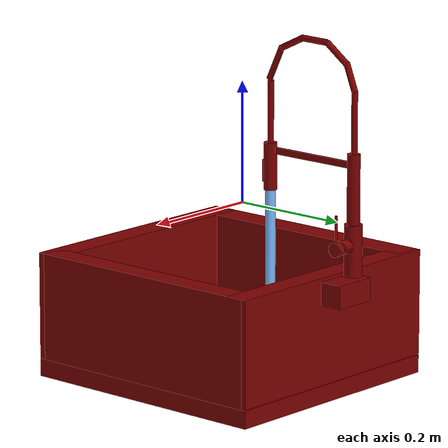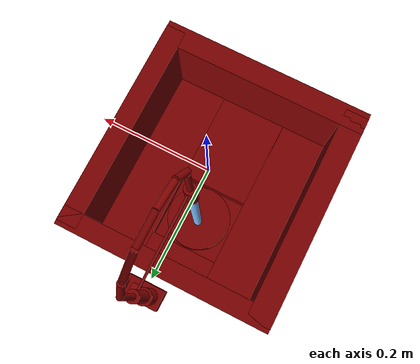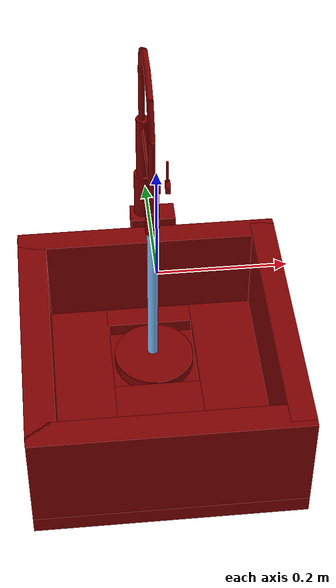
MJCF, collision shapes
<mujoco model="model">
  <compiler angle="radian"/>
  <asset>
    <mesh file="visuals/handle.obj" name="handle_vis"/>
    <mesh file="visuals/Body001.obj" name="Body001_vis"/>
    <mesh file="visuals/Funnel001.obj" name="Funnel001_vis"/>
    <mesh file="visuals/spout.obj" name="spout_vis"/>
    <texture file="visuals/T_BC001.png" name="Body001_material" type="2d"/>
    <material name="Body001_material" rgba="1 1 1 1.0" texture="Body001_material" shininess="1" specular="1"/>
    <texture file="visuals/T_BC001.png" name="handle_material" type="2d"/>
    <material name="handle_material" rgba="1 1 1 1.0" texture="handle_material" shininess="1" specular="1"/>
    <texture file="visuals/T_BC001.png" name="Funnel001_material" type="2d"/>
    <material name="Funnel001_material" rgba="1 1 1 1.0" texture="Funnel001_material" shininess="1" specular="1"/>
    <texture file="visuals/T_BC001.png" name="spout_material" type="2d"/>
    <material name="spout_material" rgba="1 1 1 1.0" texture="spout_material" shininess="1" specular="1"/>
  </asset>
  <default>
    <default class="visual">
      <geom conaffinity="0" contype="0" group="1" type="mesh"/>
    </default>
    <default class="collision">
      <geom group="0" rgba="0.5 0 0 0.5"/>
    </default>
    <default class="spawn">
      <geom group="0" rgba="1 1 1 0.5" contype="0" conaffinity="0"/>
      <site group="0" rgba="1 1 1 0.5"/>
    </default>
    <default class="region">
      <geom group="1" conaffinity="0" contype="0" rgba="0 1 0 0"/>
    </default>
  </default>
  <worldbody>
    <body>
      <body name="object">
        <geom mesh="Body001_vis" type="mesh" solimp="0.998 0.998 0.001" solref="0.001 1" density="100" friction="0.95 0.3 0.1" class="visual" material="Body001_material"/>
        <geom class="collision" type="box" pos="-0.000049 -0.027495 -0.277828" size="0.21366256475448608 0.22289739549160004 0.014821182005107403" quat="1.0 0.0 0.0 0.0"/>
        <geom class="collision" type="box" pos="-0.000049 -0.228573 -0.173405" size="0.21366256475448608 0.02181948535144329 0.08816339075565338" quat="1.0 0.0 0.0 0.0"/>
        <geom class="collision" type="box" pos="-0.000049 0.176630 -0.173405" size="0.21366256475448608 0.01914597488939762 0.08816339075565338" quat="1.0 0.0 0.0 0.0"/>
        <geom class="collision" type="box" pos="0.194057 -0.026233 -0.173405" size="0.019938509911298752 0.21366256475448608 0.08816339075565338" quat="1.0 0.0 0.0 0.0"/>
        <geom class="collision" type="box" pos="-0.191039 -0.026233 -0.173405" size="0.023191722109913826 0.21366256475448608 0.08816339075565338" quat="1.0 0.0 0.0 0.0"/>
        <geom class="collision" type="box" pos="0.014791 0.230808 -0.103967" size="0.037191566079854965 0.019080042839050293 0.018999824300408363" quat="1.0 0.0 0.0 0.0"/>
        <geom class="collision" type="box" pos="-0.127558 -0.027495 -0.254930" size="0.05658772215247154 0.19020044803619385 0.014821182005107403" quat="1.0 0.0 0.0 0.0"/>
        <geom class="collision" type="box" pos="0.126700 -0.027495 -0.254930" size="0.05658772215247154 0.19020044803619385 0.014821182005107403" quat="1.0 0.0 0.0 0.0"/>
        <geom class="collision" type="box" pos="-0.000650 -0.117295 -0.254930" size="0.07195349037647247 0.10080119967460632 0.014821182005107403" quat="1.0 0.0 0.0 0.0"/>
        <geom class="collision" type="box" pos="-0.000650 0.142771 -0.254930" size="0.07195349037647247 0.022782357409596443 0.014821182005107403" quat="1.0 0.0 0.0 0.0"/>
        <geom class="collision" type="cylinder" pos="-0.001173 0.231844 -0.039696" size="0.014722767286002636 0.042030561715364456" quat="1.0 0.0 0.0 0.0"/>
        <geom class="collision" type="cylinder" pos="0.017728 0.230946 -0.031228" size="0.01090774405747652 0.009847342036664486" quat="0.7071068286895752 -0.0 0.7071067690849304 0.0"/>
        <body name="handle">
          <joint axis="1.0 0.0 0.0" pos="0.035928 0.230963 -0.031460" limited="true" name="handle_joint_hinge_0" type="hinge" range="-0.7853981633974483 0.7853981633974483" damping="1" frictionloss="1" armature=".01" stiffness="0.01" springref="-0.01"/>
          <joint axis="0.0 1.0 0.0" pos="0.035928 0.230963 -0.031460" limited="true" name="handle_joint_hinge_1" type="hinge" range="0.0 0.17453292519943295" damping="1" frictionloss="1" armature=".01" stiffness="0.05" springref="-0.1"/>
          <geom mesh="handle_vis" type="mesh" solimp="0.998 0.998 0.001" solref="0.001 1" density="100" friction="0.95 0.3 0.1" class="visual" material="handle_material"/>
          <geom class="collision" type="cylinder" pos="0.039576 0.230946 0.001278" size="0.0021245551761239767 0.021682260558009148" quat="1.0 0.0 0.0 0.0"/>
          <geom class="collision" type="cylinder" pos="0.040463 0.230946 -0.031228" size="0.011749033816158772 0.004021472297608852" quat="0.7071068286895752 -0.0 0.7071067690849304 0.0"/>
        </body>
        <body name="Funnel001">
          <joint axis="0.0 0.0 1.0" pos="-0.000001 0.052773 -0.253619" limited="true" name="Funnel001_joint" range="0.0 0.08" type="slide" damping="1" frictionloss="1" armature=".01" stiffness="0.05"/>
          <geom mesh="Funnel001_vis" type="mesh" solimp="0.998 0.998 0.001" solref="0.001 1" density="100" friction="0.95 0.3 0.1" class="visual" material="Funnel001_material"/>
          <geom class="collision" type="cylinder" pos="0.000011 0.052027 -0.251096" size="0.06577203422784805 0.00993549544364214" quat="1.0 0.0 0.0 0.0"/>
        </body>
        <body name="spout">
          <joint axis="0.0 0.0 1.0" pos="-0.001250 0.231828 0.146606" limited="true" name="spout_joint" range="-0.7853981633974483 0.7853981633974483" type="hinge" damping="1" frictionloss="1" armature=".01" stiffness="0.01" springref="-0.01"/>
          <site type="cylinder" rgba="0.5 0.75 1 1" size="0.008400022983551025 0.1558043658733368" pos="-0.001213 0.058520 -0.122319" name="water"/>
          <geom mesh="spout_vis" type="mesh" solimp="0.998 0.998 0.001" solref="0.001 1" density="100" friction="0.95 0.3 0.1" class="visual" material="spout_material"/>
          <geom class="collision" type="cylinder" pos="-0.001173 0.231716 0.058620" size="0.010490449145436287 0.056912828236818314" quat="1.0 0.0 0.0 0.0"/>
          <geom class="collision" type="cylinder" pos="-0.001556 0.232168 0.165737" size="0.00506379920989275 0.05056527256965637" quat="1.0 0.0 0.0 0.0"/>
          <geom class="collision" type="cylinder" pos="-0.001556 0.223842 0.236833" size="0.00506379920989275 0.024297237396240234" quat="0.9829229712486267 0.1840173751115799 0.0 0.0"/>
          <geom class="collision" type="cylinder" pos="-0.001556 0.194978 0.271367" size="0.00506379920989275 0.024297237396240234" quat="0.8916955590248108 0.4526357054710388 0.0 0.0"/>
          <geom class="collision" type="cylinder" pos="-0.001556 0.149363 0.285886" size="0.00506379920989275 0.024297237396240234" quat="0.7119148969650269 0.702265739440918 1.9894496097094492e-18 -2.1740198673544782e-18"/>
          <geom class="collision" type="cylinder" pos="-0.001556 0.104340 0.276018" size="0.00506379920989275 0.024297237396240234" quat="0.5284743905067444 0.8489492535591125 2.441664287508514e-18 -1.6500137706016298e-18"/>
          <geom class="collision" type="cylinder" pos="-0.001556 0.068934 0.239062" size="0.00506379920989275 0.029924193397164345" quat="0.21848298609256744 0.9758407473564148 2.849608465718894e-18 -7.511621455727333e-19"/>
          <geom class="collision" type="cylinder" pos="-0.001556 0.058520 0.159106" size="0.00506379920989275 0.05056527256965637" quat="1.0 0.0 0.0 0.0"/>
          <geom class="collision" type="cylinder" pos="-0.001213 0.058520 0.069843" size="0.010660765692591667 0.03866029903292656" quat="1.0 0.0 0.0 0.0"/>
          <geom class="collision" type="box" pos="-0.001416 0.145903 0.096536" size="0.0014512402703985572 0.07775963097810745 0.005529983434826136" quat="1.0 0.0 0.0 0.0"/>
          <geom class="collision" type="box" pos="-0.001093 0.047184 0.061239" size="0.004602022003382444 0.0018451862270012498 0.01818827912211418" quat="1.0 0.0 0.0 0.0"/>
        </body>
        <geom class="region" name="reg_main" type="box" pos="0.0 -0.027239 -0.188857" size="0.213563 0.22243400000000002 0.10344999999999999"/>
        <geom class="region" name="reg_basin" type="box" pos="0.0013959999999999945 -0.0288075 -0.1662445" size="0.188017 0.1848395 0.07243050000000001"/>
      </body>
    </body>
  </worldbody>
  <actuator>
    <motor name="handle_joint_hinge_0_actuator" joint="handle_joint_hinge_0" gear="10"/>
    <motor name="handle_joint_hinge_1_actuator" joint="handle_joint_hinge_1" gear="10"/>
    <motor name="Funnel001_joint_actuator" joint="Funnel001_joint" gear="10"/>
    <motor name="spout_joint_actuator" joint="spout_joint" gear="10"/>
  </actuator>
</mujoco>
